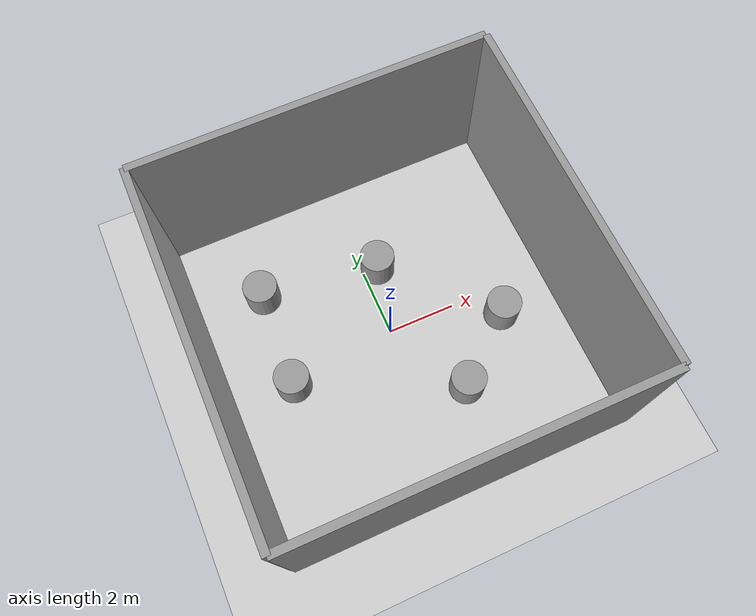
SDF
<sdf version="1.6">
 <world name="default">
  <light name="sun" type="directional">
   <pose>0 0 10 0 -0 0</pose>
   <diffuse>0.8 0.8 0.8 1</diffuse>
   <specular>0.2 0.2 0.2 1</specular>
   <attenuation>
    <range>1000</range>
    <constant>0.9</constant>
    <linear>0.01</linear>
    <quadratic>0.001</quadratic>
   </attenuation>
   <direction>-0.5 0.1 -0.9</direction>
  </light>
  <model name="ground_plane">
   <static>1</static>
   <link name="link">
    <collision name="collision">
     <geometry><plane><normal>0 0 1</normal><size>100 100</size></plane></geometry>
     <surface>
      <contact><collide_bitmask>65535</collide_bitmask></contact>
      <friction><ode><mu>100</mu><mu2>50</mu2></ode></friction>
     </surface>
    </collision>
    <visual name="visual">
     <cast_shadows>0</cast_shadows>
     <geometry><plane><normal>0 0 1</normal><size>100 100</size></plane></geometry>
     <material>
      <script><uri>file://media/materials/scripts/gazebo.material</uri><name>Gazebo/Grey</name></script>
     </material>
    </visual>
   </link>
  </model>
  <gravity>0 0 -9.8</gravity>
  <magnetic_field>6e-06 2.3e-05 -4.2e-05</magnetic_field>
  <atmosphere type="adiabatic"/>
  <physics name="default_physics" default="0" type="ode">
   <max_step_size>0.001</max_step_size>
   <real_time_factor>1</real_time_factor>
   <real_time_update_rate>1000</real_time_update_rate>
  </physics>
  <scene><ambient>0.4 0.4 0.4 1</ambient><background>0.7 0.7 0.7 1</background><shadows>1</shadows></scene>
  <audio><device>default</device></audio>
  <spherical_coordinates>
   <surface_model>EARTH_WGS84</surface_model>
   <latitude_deg>0</latitude_deg>
   <longitude_deg>0</longitude_deg>
   <elevation>0</elevation>
   <heading_deg>0</heading_deg>
  </spherical_coordinates>
  <model name="wall">
   <link name="link">
    <inertial>
     <mass>1</mass>
     <inertia>
      <ixx>0.166667</ixx>
      <ixy>0</ixy>
      <ixz>0</ixz>
      <iyy>0.166667</iyy>
      <iyz>0</iyz>
      <izz>0.166667</izz>
     </inertia>
    </inertial>
    <visual name="visual">
     <geometry><box><size>0.209258 10 5</size></box></geometry>
     <material>
      <script><name>Gazebo/Grey</name><uri>file://media/materials/scripts/gazebo.material</uri></script>
      <shader type="vertex"><normal_map>__default__</normal_map></shader>
      <ambient>0.3 0.3 0.3 1</ambient>
      <diffuse>0.7 0.7 0.7 1</diffuse>
      <specular>0.01 0.01 0.01 1</specular>
      <emissive>0 0 0 1</emissive>
     </material>
    </visual>
    <collision name="collision">
     <geometry><box><size>0.209258 1 1</size></box></geometry>
     <surface>
      <friction>
       <ode><mu>1</mu><mu2>1</mu2><fdir1>0 0 0</fdir1><slip1>0</slip1><slip2>0</slip2></ode>
       <torsional>
        <coefficient>1</coefficient>
        <patch_radius>0</patch_radius>
        <surface_radius>0</surface_radius>
        <use_patch_radius>1</use_patch_radius>
        <ode><slip>0</slip></ode>
       </torsional>
      </friction>
      <bounce><restitution_coefficient>0</restitution_coefficient><threshold>1e+06</threshold></bounce>
      <contact>
       <collide_without_contact>0</collide_without_contact>
       <collide_without_contact_bitmask>1</collide_without_contact_bitmask>
       <collide_bitmask>1</collide_bitmask>
       <ode>
        <soft_cfm>0</soft_cfm>
        <soft_erp>0.2</soft_erp>
        <kp>1e+13</kp>
        <kd>1</kd>
        <max_vel>0.01</max_vel>
        <min_depth>0</min_depth>
       </ode>
       <bullet>
        <split_impulse>1</split_impulse>
        <split_impulse_penetration_threshold>-0.01</split_impulse_penetration_threshold>
        <soft_cfm>0</soft_cfm>
        <soft_erp>0.2</soft_erp>
        <kp>1e+13</kp>
        <kd>1</kd>
       </bullet>
      </contact>
     </surface>
    </collision>
   </link>
   <static>0</static>
   <pose>0 5 2.5 0 0 -1.56385</pose>
  </model>
  <model name="wall_clone">
   <link name="link">
    <inertial>
     <mass>1</mass>
     <inertia>
      <ixx>0.166667</ixx>
      <ixy>0</ixy>
      <ixz>0</ixz>
      <iyy>0.166667</iyy>
      <iyz>0</iyz>
      <izz>0.166667</izz>
     </inertia>
    </inertial>
    <visual name="visual">
     <geometry><box><size>0.209258 10 5</size></box></geometry>
     <material>
      <script><name>Gazebo/Grey</name><uri>file://media/materials/scripts/gazebo.material</uri></script>
      <shader type="vertex"><normal_map>__default__</normal_map></shader>
      <ambient>0.3 0.3 0.3 1</ambient>
      <diffuse>0.7 0.7 0.7 1</diffuse>
      <specular>0.01 0.01 0.01 1</specular>
      <emissive>0 0 0 1</emissive>
     </material>
    </visual>
    <collision name="collision">
     <geometry><box><size>0.209258 1 1</size></box></geometry>
     <surface>
      <friction>
       <ode><mu>1</mu><mu2>1</mu2><fdir1>0 0 0</fdir1><slip1>0</slip1><slip2>0</slip2></ode>
       <torsional>
        <coefficient>1</coefficient>
        <patch_radius>0</patch_radius>
        <surface_radius>0</surface_radius>
        <use_patch_radius>1</use_patch_radius>
        <ode><slip>0</slip></ode>
       </torsional>
      </friction>
      <bounce><restitution_coefficient>0</restitution_coefficient><threshold>1e+06</threshold></bounce>
      <contact>
       <collide_without_contact>0</collide_without_contact>
       <collide_without_contact_bitmask>1</collide_without_contact_bitmask>
       <collide_bitmask>1</collide_bitmask>
       <ode>
        <soft_cfm>0</soft_cfm>
        <soft_erp>0.2</soft_erp>
        <kp>1e+13</kp>
        <kd>1</kd>
        <max_vel>0.01</max_vel>
        <min_depth>0</min_depth>
       </ode>
       <bullet>
        <split_impulse>1</split_impulse>
        <split_impulse_penetration_threshold>-0.01</split_impulse_penetration_threshold>
        <soft_cfm>0</soft_cfm>
        <soft_erp>0.2</soft_erp>
        <kp>1e+13</kp>
        <kd>1</kd>
       </bullet>
      </contact>
     </surface>
    </collision>
   </link>
   <static>0</static>
   <pose>0 -5 2.5 0 0 -1.57431</pose>
  </model>
  <model name="wall_clone_clone">
   <link name="link">
    <inertial>
     <mass>1</mass>
     <inertia>
      <ixx>0.166667</ixx>
      <ixy>0</ixy>
      <ixz>0</ixz>
      <iyy>0.166667</iyy>
      <iyz>0</iyz>
      <izz>0.166667</izz>
     </inertia>
    </inertial>
    <visual name="visual">
     <geometry><box><size>0.209258 10 5</size></box></geometry>
     <material>
      <script><name>Gazebo/Grey</name><uri>file://media/materials/scripts/gazebo.material</uri></script>
      <shader type="vertex"><normal_map>__default__</normal_map></shader>
      <ambient>0.3 0.3 0.3 1</ambient>
      <diffuse>0.7 0.7 0.7 1</diffuse>
      <specular>0.01 0.01 0.01 1</specular>
      <emissive>0 0 0 1</emissive>
     </material>
    </visual>
    <collision name="collision">
     <geometry><box><size>0.209258 1 1</size></box></geometry>
     <surface>
      <friction>
       <ode><mu>1</mu><mu2>1</mu2><fdir1>0 0 0</fdir1><slip1>0</slip1><slip2>0</slip2></ode>
       <torsional>
        <coefficient>1</coefficient>
        <patch_radius>0</patch_radius>
        <surface_radius>0</surface_radius>
        <use_patch_radius>1</use_patch_radius>
        <ode><slip>0</slip></ode>
       </torsional>
      </friction>
      <bounce><restitution_coefficient>0</restitution_coefficient><threshold>1e+06</threshold></bounce>
      <contact>
       <collide_without_contact>0</collide_without_contact>
       <collide_without_contact_bitmask>1</collide_without_contact_bitmask>
       <collide_bitmask>1</collide_bitmask>
       <ode>
        <soft_cfm>0</soft_cfm>
        <soft_erp>0.2</soft_erp>
        <kp>1e+13</kp>
        <kd>1</kd>
        <max_vel>0.01</max_vel>
        <min_depth>0</min_depth>
       </ode>
       <bullet>
        <split_impulse>1</split_impulse>
        <split_impulse_penetration_threshold>-0.01</split_impulse_penetration_threshold>
        <soft_cfm>0</soft_cfm>
        <soft_erp>0.2</soft_erp>
        <kp>1e+13</kp>
        <kd>1</kd>
       </bullet>
      </contact>
     </surface>
    </collision>
   </link>
   <static>0</static>
   <pose>5 0 2.5 0 -0 0</pose>
  </model>
  <model name="wall_clone_clone_clone">
   <link name="link">
    <inertial>
     <mass>1</mass>
     <inertia>
      <ixx>0.166667</ixx>
      <ixy>0</ixy>
      <ixz>0</ixz>
      <iyy>0.166667</iyy>
      <iyz>0</iyz>
      <izz>0.166667</izz>
     </inertia>
    </inertial>
    <visual name="visual">
     <geometry><box><size>0.209258 10 5</size></box></geometry>
     <material>
      <script><name>Gazebo/Grey</name><uri>file://media/materials/scripts/gazebo.material</uri></script>
      <shader type="vertex"><normal_map>__default__</normal_map></shader>
      <ambient>0.3 0.3 0.3 1</ambient>
      <diffuse>0.7 0.7 0.7 1</diffuse>
      <specular>0.01 0.01 0.01 1</specular>
      <emissive>0 0 0 1</emissive>
     </material>
    </visual>
    <collision name="collision">
     <geometry><box><size>0.209258 1 1</size></box></geometry>
     <surface>
      <friction>
       <ode><mu>1</mu><mu2>1</mu2><fdir1>0 0 0</fdir1><slip1>0</slip1><slip2>0</slip2></ode>
       <torsional>
        <coefficient>1</coefficient>
        <patch_radius>0</patch_radius>
        <surface_radius>0</surface_radius>
        <use_patch_radius>1</use_patch_radius>
        <ode><slip>0</slip></ode>
       </torsional>
      </friction>
      <bounce><restitution_coefficient>0</restitution_coefficient><threshold>1e+06</threshold></bounce>
      <contact>
       <collide_without_contact>0</collide_without_contact>
       <collide_without_contact_bitmask>1</collide_without_contact_bitmask>
       <collide_bitmask>1</collide_bitmask>
       <ode>
        <soft_cfm>0</soft_cfm>
        <soft_erp>0.2</soft_erp>
        <kp>1e+13</kp>
        <kd>1</kd>
        <max_vel>0.01</max_vel>
        <min_depth>0</min_depth>
       </ode>
       <bullet>
        <split_impulse>1</split_impulse>
        <split_impulse_penetration_threshold>-0.01</split_impulse_penetration_threshold>
        <soft_cfm>0</soft_cfm>
        <soft_erp>0.2</soft_erp>
        <kp>1e+13</kp>
        <kd>1</kd>
       </bullet>
      </contact>
     </surface>
    </collision>
   </link>
   <static>0</static>
   <pose>-5 0 2.5 0 -0 0</pose>
  </model>
  <model name="unit_cylinder">
   <pose>-3.01778 2.47294 0.5 0 -0 0</pose>
   <link name="link">
    <inertial>
     <mass>1</mass>
     <inertia><ixx>0.145833</ixx><ixy>0</ixy><ixz>0</ixz><iyy>0.145833</iyy><iyz>0</iyz><izz>0.125</izz></inertia>
    </inertial>
    <collision name="collision">
     <geometry><cylinder><radius>0.5</radius><length>1</length></cylinder></geometry>
    </collision>
    <visual name="visual">
     <geometry><cylinder><radius>0.5</radius><length>1</length></cylinder></geometry>
     <material>
      <script><name>Gazebo/Grey</name><uri>file://media/materials/scripts/gazebo.material</uri></script>
     </material>
    </visual>
   </link>
  </model>
  <model name="unit_cylinder_0">
   <pose>-3.16801 -0.390021 0.5 0 -0 0</pose>
   <link name="link">
    <inertial>
     <mass>1</mass>
     <inertia><ixx>0.145833</ixx><ixy>0</ixy><ixz>0</ixz><iyy>0.145833</iyy><iyz>0</iyz><izz>0.125</izz></inertia>
    </inertial>
    <collision name="collision">
     <geometry><cylinder><radius>0.5</radius><length>1</length></cylinder></geometry>
    </collision>
    <visual name="visual">
     <geometry><cylinder><radius>0.5</radius><length>1</length></cylinder></geometry>
     <material>
      <script><name>Gazebo/Grey</name><uri>file://media/materials/scripts/gazebo.material</uri></script>
     </material>
    </visual>
   </link>
  </model>
  <model name="unit_cylinder_1">
   <pose>0.448397 1.98663 0.5 0 -0 0</pose>
   <link name="link">
    <inertial>
     <mass>1</mass>
     <inertia><ixx>0.145833</ixx><ixy>0</ixy><ixz>0</ixz><iyy>0.145833</iyy><iyz>0</iyz><izz>0.125</izz></inertia>
    </inertial>
    <collision name="collision">
     <geometry><cylinder><radius>0.5</radius><length>1</length></cylinder></geometry>
    </collision>
    <visual name="visual">
     <geometry><cylinder><radius>0.5</radius><length>1</length></cylinder></geometry>
     <material>
      <script><name>Gazebo/Grey</name><uri>file://media/materials/scripts/gazebo.material</uri></script>
     </material>
    </visual>
   </link>
  </model>
  <model name="unit_cylinder_2">
   <pose>1.28738 -2.40632 0.5 0 -0 0</pose>
   <link name="link">
    <inertial>
     <mass>1</mass>
     <inertia><ixx>0.145833</ixx><ixy>0</ixy><ixz>0</ixz><iyy>0.145833</iyy><iyz>0</iyz><izz>0.125</izz></inertia>
    </inertial>
    <collision name="collision">
     <geometry><cylinder><radius>0.5</radius><length>1</length></cylinder></geometry>
    </collision>
    <visual name="visual">
     <geometry><cylinder><radius>0.5</radius><length>1</length></cylinder></geometry>
     <material>
      <script><name>Gazebo/Grey</name><uri>file://media/materials/scripts/gazebo.material</uri></script>
     </material>
    </visual>
   </link>
  </model>
  <model name="unit_cylinder_3">
   <pose>3.18722 -0.810488 0.5 0 -0 0</pose>
   <link name="link">
    <inertial>
     <mass>1</mass>
     <inertia><ixx>0.145833</ixx><ixy>0</ixy><ixz>0</ixz><iyy>0.145833</iyy><iyz>0</iyz><izz>0.125</izz></inertia>
    </inertial>
    <collision name="collision">
     <geometry><cylinder><radius>0.5</radius><length>1</length></cylinder></geometry>
    </collision>
    <visual name="visual">
     <geometry><cylinder><radius>0.5</radius><length>1</length></cylinder></geometry>
     <material>
      <script><name>Gazebo/Grey</name><uri>file://media/materials/scripts/gazebo.material</uri></script>
     </material>
    </visual>
   </link>
  </model>
 </world>
</sdf>
